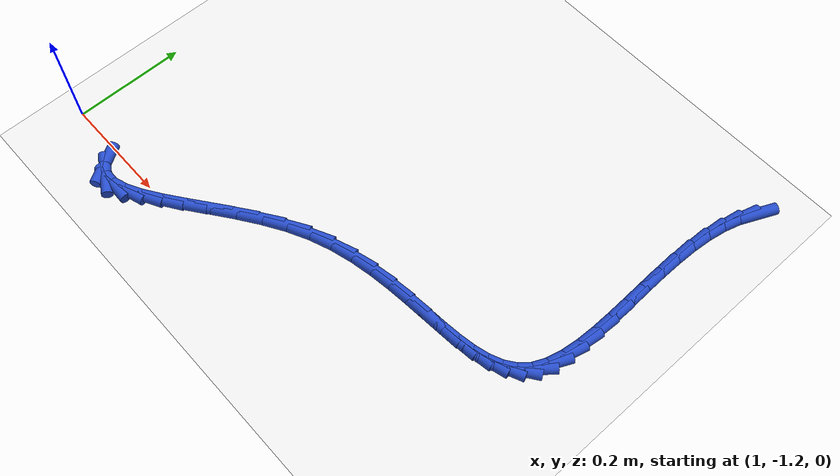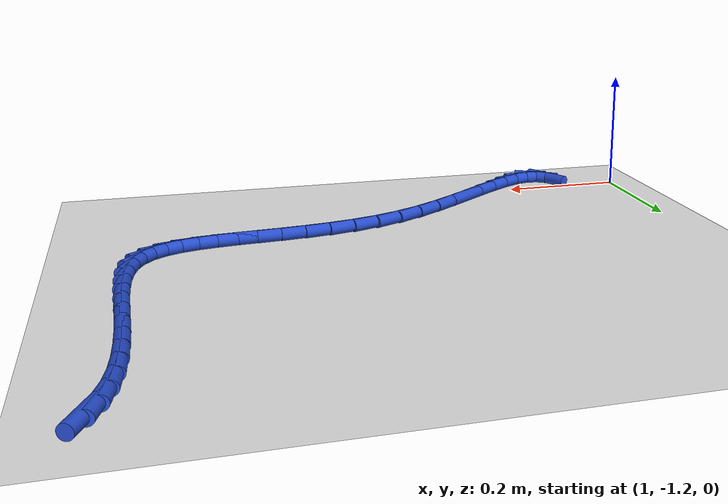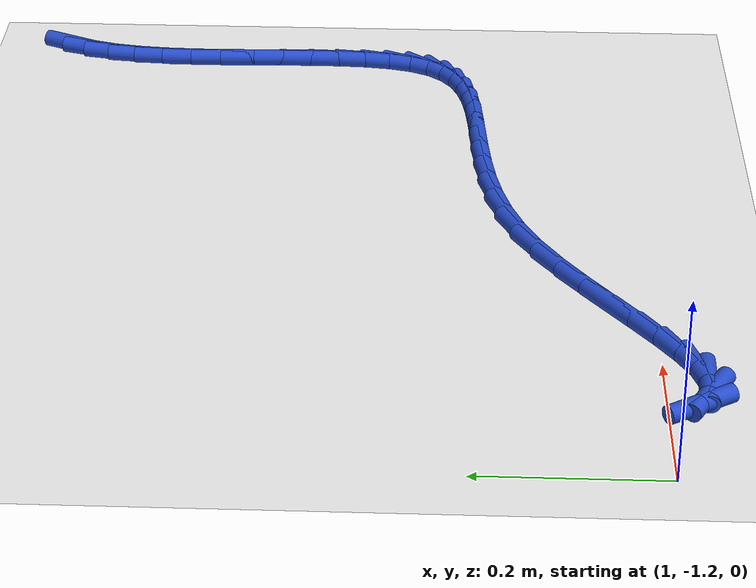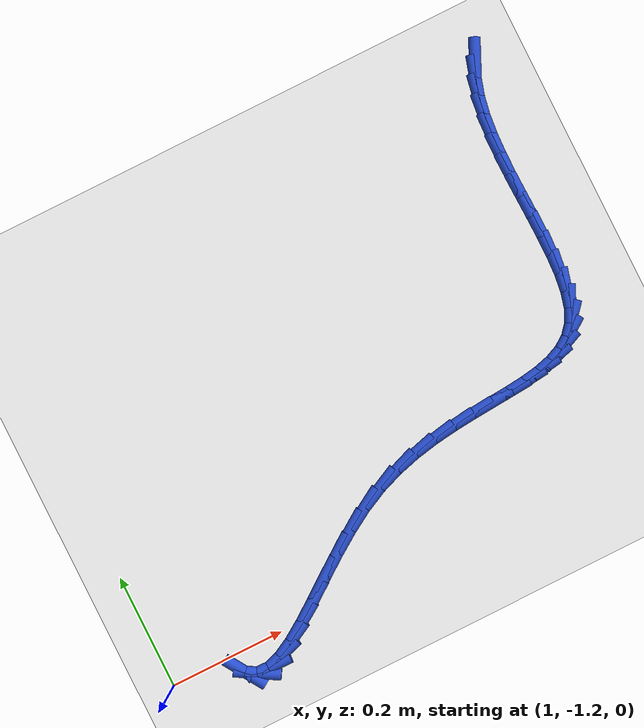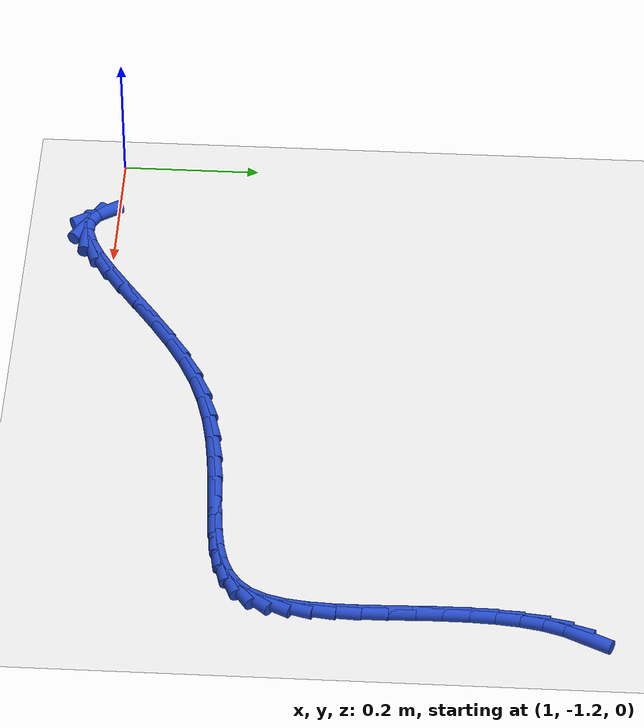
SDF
<sdf version="1.6">
 <world name="default">
  <model name="ground_plane">
   <static>1</static>
   <link name="link">
    <collision name="collision">
     <geometry><plane><normal>0 0 1</normal><size>100 100</size></plane></geometry>
     <surface><friction><ode><mu>100</mu><mu2>50</mu2></ode></friction></surface>
    </collision>
    <visual name="visual">
     <cast_shadows>0</cast_shadows>
     <geometry><plane><normal>0 0 1</normal><size>100 100</size></plane></geometry>
     <material>
      <script><uri>file://media/materials/scripts/gazebo.material</uri><name>Gazebo/WhiteGlow</name></script>
     </material>
    </visual>
   </link>
  </model>
  <model name="line">
   <link name="link_136">
    <pose>1.91003997983124 -0.49921761057943487 0.01 0 1.57 1.1378103497301253</pose>
    <collision name="collision">
     <geometry><cylinder><radius>0.01</radius><length>0.08</length></cylinder></geometry>
    </collision>
    <visual name="visual">
     <material>
      <script><name>Gazebo/Blue</name><uri>file://media/materials/scripts/gazebo.material</uri></script>
     </material>
     <geometry><cylinder><radius>0.01</radius><length>0.08</length></cylinder></geometry>
    </visual>
   </link>
   <link name="link_137">
    <pose>1.8979495693517696 -0.5253737416399826 0.01 0 1.57 1.282095721620918</pose>
    <collision name="collision">
     <geometry><cylinder><radius>0.01</radius><length>0.08</length></cylinder></geometry>
    </collision>
    <visual name="visual">
     <material>
      <script><name>Gazebo/Blue</name><uri>file://media/materials/scripts/gazebo.material</uri></script>
     </material>
     <geometry><cylinder><radius>0.01</radius><length>0.08</length></cylinder></geometry>
    </visual>
   </link>
   <link name="link_138">
    <pose>1.889272196082277 -0.5545906609637246 0.01 0 1.57 1.3911758520988065</pose>
    <collision name="collision">
     <geometry><cylinder><radius>0.01</radius><length>0.08</length></cylinder></geometry>
    </collision>
    <visual name="visual">
     <material>
      <script><name>Gazebo/Blue</name><uri>file://media/materials/scripts/gazebo.material</uri></script>
     </material>
     <geometry><cylinder><radius>0.01</radius><length>0.08</length></cylinder></geometry>
    </visual>
   </link>
   <link name="link_139">
    <pose>1.883496894300706 -0.586396930678244 0.01 0 1.57 1.471367650458028</pose>
    <collision name="collision">
     <geometry><cylinder><radius>0.01</radius><length>0.08</length></cylinder></geometry>
    </collision>
    <visual name="visual">
     <material>
      <script><name>Gazebo/Blue</name><uri>file://media/materials/scripts/gazebo.material</uri></script>
     </material>
     <geometry><cylinder><radius>0.01</radius><length>0.08</length></cylinder></geometry>
    </visual>
   </link>
   <link name="link_140">
    <pose>1.880112698285 -0.620321112911125 0.01 0 1.57 1.5285378841669248</pose>
    <collision name="collision">
     <geometry><cylinder><radius>0.01</radius><length>0.08</length></cylinder></geometry>
    </collision>
    <visual name="visual">
     <material>
      <script><name>Gazebo/Blue</name><uri>file://media/materials/scripts/gazebo.material</uri></script>
     </material>
     <geometry><cylinder><radius>0.01</radius><length>0.08</length></cylinder></geometry>
    </visual>
   </link>
   <link name="link_141">
    <pose>1.8786086423131025 -0.6558917697899485 0.01 0 1.57 1.5671256641688662</pose>
    <collision name="collision">
     <geometry><cylinder><radius>0.01</radius><length>0.08</length></cylinder></geometry>
    </collision>
    <visual name="visual">
     <material>
      <script><name>Gazebo/Blue</name><uri>file://media/materials/scripts/gazebo.material</uri></script>
     </material>
     <geometry><cylinder><radius>0.01</radius><length>0.08</length></cylinder></geometry>
    </visual>
   </link>
   <link name="link_142">
    <pose>1.878473760662957 -0.6926374634422989 0.01 0 1.57 -1.5514838919917502</pose>
    <collision name="collision">
     <geometry><cylinder><radius>0.01</radius><length>0.08</length></cylinder></geometry>
    </collision>
    <visual name="visual">
     <material>
      <script><name>Gazebo/Blue</name><uri>file://media/materials/scripts/gazebo.material</uri></script>
     </material>
     <geometry><cylinder><radius>0.01</radius><length>0.08</length></cylinder></geometry>
    </visual>
   </link>
   <link name="link_143">
    <pose>1.8791970876125064 -0.7300867559957588 0.01 0 1.57 -1.5424363940528596</pose>
    <collision name="collision">
     <geometry><cylinder><radius>0.01</radius><length>0.08</length></cylinder></geometry>
    </collision>
    <visual name="visual">
     <material>
      <script><name>Gazebo/Blue</name><uri>file://media/materials/scripts/gazebo.material</uri></script>
     </material>
     <geometry><cylinder><radius>0.01</radius><length>0.08</length></cylinder></geometry>
    </visual>
   </link>
   <link name="link_144">
    <pose>1.880265925626304 -0.7677649641122709 0.01 0 1.57 -1.5486793190890158</pose>
    <collision name="collision">
     <geometry><cylinder><radius>0.01</radius><length>0.08</length></cylinder></geometry>
    </collision>
    <visual name="visual">
     <material>
      <script><name>Gazebo/Blue</name><uri>file://media/materials/scripts/gazebo.material</uri></script>
     </material>
     <geometry><cylinder><radius>0.01</radius><length>0.08</length></cylinder></geometry>
    </visual>
   </link>
   <link name="link_145">
    <pose>1.8810907702110387 -0.8050534661148345 0.01 0 1.57 1.5676288606662598</pose>
    <collision name="collision">
     <geometry><cylinder><radius>0.01</radius><length>0.08</length></cylinder></geometry>
    </collision>
    <visual name="visual">
     <material>
      <script><name>Gazebo/Blue</name><uri>file://media/materials/scripts/gazebo.material</uri></script>
     </material>
     <geometry><cylinder><radius>0.01</radius><length>0.08</length></cylinder></geometry>
    </visual>
   </link>
   <link name="link_146">
    <pose>1.880976480653816 -0.8411356751628524 0.01 0 1.57 1.5192558845597828</pose>
    <collision name="collision">
     <geometry><cylinder><radius>0.01</radius><length>0.08</length></cylinder></geometry>
    </collision>
    <visual name="visual">
     <material>
      <script><name>Gazebo/Blue</name><uri>file://media/materials/scripts/gazebo.material</uri></script>
     </material>
     <geometry><cylinder><radius>0.01</radius><length>0.08</length></cylinder></geometry>
    </visual>
   </link>
   <link name="link_147">
    <pose>1.8792202343581035 -0.875180608355768 0.01 0 1.57 1.4400057690276784</pose>
    <collision name="collision">
     <geometry><cylinder><radius>0.01</radius><length>0.08</length></cylinder></geometry>
    </collision>
    <visual name="visual">
     <material>
      <script><name>Gazebo/Blue</name><uri>file://media/materials/scripts/gazebo.material</uri></script>
     </material>
     <geometry><cylinder><radius>0.01</radius><length>0.08</length></cylinder></geometry>
    </visual>
   </link>
   <link name="link_148">
    <pose>1.8751192087273691 -0.906357282793027 0.01 0 1.57 1.3162750425958551</pose>
    <collision name="collision">
     <geometry><cylinder><radius>0.01</radius><length>0.08</length></cylinder></geometry>
    </collision>
    <visual name="visual">
     <material>
      <script><name>Gazebo/Blue</name><uri>file://media/materials/scripts/gazebo.material</uri></script>
     </material>
     <geometry><cylinder><radius>0.01</radius><length>0.08</length></cylinder></geometry>
    </visual>
   </link>
   <link name="link_149">
    <pose>1.8679705811650809 -0.9338347155740715 0.01 0 1.57 1.12738827240143</pose>
    <collision name="collision">
     <geometry><cylinder><radius>0.01</radius><length>0.08</length></cylinder></geometry>
    </collision>
    <visual name="visual">
     <material>
      <script><name>Gazebo/Blue</name><uri>file://media/materials/scripts/gazebo.material</uri></script>
     </material>
     <geometry><cylinder><radius>0.01</radius><length>0.08</length></cylinder></geometry>
    </visual>
   </link>
   <link name="link_150">
    <pose>1.8570716819180084 -0.9567821516907595 0.01 0 1.57 0.8703267417220344</pose>
    <collision name="collision">
     <geometry><cylinder><radius>0.01</radius><length>0.08</length></cylinder></geometry>
    </collision>
    <visual name="visual">
     <material>
      <script><name>Gazebo/Blue</name><uri>file://media/materials/scripts/gazebo.material</uri></script>
     </material>
     <geometry><cylinder><radius>0.01</radius><length>0.08</length></cylinder></geometry>
    </visual>
   </link>
   <link name="link_151">
    <pose>1.8419522924366898 -0.9747154255201457 0.01 0 1.57 0.6143298451475984</pose>
    <collision name="collision">
     <geometry><cylinder><radius>0.01</radius><length>0.08</length></cylinder></geometry>
    </collision>
    <visual name="visual">
     <material>
      <script><name>Gazebo/Blue</name><uri>file://media/materials/scripts/gazebo.material</uri></script>
     </material>
     <geometry><cylinder><radius>0.01</radius><length>0.08</length></cylinder></geometry>
    </visual>
   </link>
   <link name="link_152">
    <pose>1.8228427796449176 -0.9881949583655505 0.01 0 1.57 0.40628219918729075</pose>
    <collision name="collision">
     <geometry><cylinder><radius>0.01</radius><length>0.08</length></cylinder></geometry>
    </collision>
    <visual name="visual">
     <material>
      <script><name>Gazebo/Blue</name><uri>file://media/materials/scripts/gazebo.material</uri></script>
     </material>
     <geometry><cylinder><radius>0.01</radius><length>0.08</length></cylinder></geometry>
    </visual>
   </link>
   <link name="link_153">
    <pose>1.800104968811005 -0.997977178546259 0.01 0 1.57 0.2572554999759626</pose>
    <collision name="collision">
     <geometry><cylinder><radius>0.01</radius><length>0.08</length></cylinder></geometry>
    </collision>
    <visual name="visual">
     <material>
      <script><name>Gazebo/Blue</name><uri>file://media/materials/scripts/gazebo.material</uri></script>
     </material>
     <geometry><cylinder><radius>0.01</radius><length>0.08</length></cylinder></geometry>
    </visual>
   </link>
   <link name="link_154">
    <pose>1.7741006852032721 -1.004818514381556 0.01 0 1.57 0.1597158538585468</pose>
    <collision name="collision">
     <geometry><cylinder><radius>0.01</radius><length>0.08</length></cylinder></geometry>
    </collision>
    <visual name="visual">
     <material>
      <script><name>Gazebo/Blue</name><uri>file://media/materials/scripts/gazebo.material</uri></script>
     </material>
     <geometry><cylinder><radius>0.01</radius><length>0.08</length></cylinder></geometry>
    </visual>
   </link>
   <link name="link_155">
    <pose>1.7451917540900348 -1.0094753941907268 0.01 0 1.57 0.10230209153707029</pose>
    <collision name="collision">
     <geometry><cylinder><radius>0.01</radius><length>0.08</length></cylinder></geometry>
    </collision>
    <visual name="visual">
     <material>
      <script><name>Gazebo/Blue</name><uri>file://media/materials/scripts/gazebo.material</uri></script>
     </material>
     <geometry><cylinder><radius>0.01</radius><length>0.08</length></cylinder></geometry>
    </visual>
   </link>
   <link name="link_156">
    <pose>1.7137400007396095 -1.0127042462930576 0.01 0 1.57 0.07588858081863742</pose>
    <collision name="collision">
     <geometry><cylinder><radius>0.01</radius><length>0.08</length></cylinder></geometry>
    </collision>
    <visual name="visual">
     <material>
      <script><name>Gazebo/Blue</name><uri>file://media/materials/scripts/gazebo.material</uri></script>
     </material>
     <geometry><cylinder><radius>0.01</radius><length>0.08</length></cylinder></geometry>
    </visual>
   </link>
   <link name="link_157">
    <pose>1.6801072504203127 -1.015261499007832 0.01 0 1.57 0.07438824976163395</pose>
    <collision name="collision">
     <geometry><cylinder><radius>0.01</radius><length>0.08</length></cylinder></geometry>
    </collision>
    <visual name="visual">
     <material>
      <script><name>Gazebo/Blue</name><uri>file://media/materials/scripts/gazebo.material</uri></script>
     </material>
     <geometry><cylinder><radius>0.01</radius><length>0.08</length></cylinder></geometry>
    </visual>
   </link>
   <link name="link_158">
    <pose>1.644655328400462 -1.0179035806543355 0.01 0 1.57 0.09409701646042966</pose>
    <collision name="collision">
     <geometry><cylinder><radius>0.01</radius><length>0.08</length></cylinder></geometry>
    </collision>
    <visual name="visual">
     <material>
      <script><name>Gazebo/Blue</name><uri>file://media/materials/scripts/gazebo.material</uri></script>
     </material>
     <geometry><cylinder><radius>0.01</radius><length>0.08</length></cylinder></geometry>
    </visual>
   </link>
   <link name="link_159">
    <pose>1.6077460599483733 -1.0213869195518537 0.01 0 1.57 0.1329061957850409</pose>
    <collision name="collision">
     <geometry><cylinder><radius>0.01</radius><length>0.08</length></cylinder></geometry>
    </collision>
    <visual name="visual">
     <material>
      <script><name>Gazebo/Blue</name><uri>file://media/materials/scripts/gazebo.material</uri></script>
     </material>
     <geometry><cylinder><radius>0.01</radius><length>0.08</length></cylinder></geometry>
    </visual>
   </link>
   <link name="link_160">
    <pose>1.5697412703323645 -1.0264679440196716 0.01 0 1.57 0.18962555444464063</pose>
    <collision name="collision">
     <geometry><cylinder><radius>0.01</radius><length>0.08</length></cylinder></geometry>
    </collision>
    <visual name="visual">
     <material>
      <script><name>Gazebo/Blue</name><uri>file://media/materials/scripts/gazebo.material</uri></script>
     </material>
     <geometry><cylinder><radius>0.01</radius><length>0.08</length></cylinder></geometry>
    </visual>
   </link>
   <link name="link_161">
    <pose>1.5310027848207504 -1.0339030823770732 0.01 0 1.57 0.26337541006103904</pose>
    <collision name="collision">
     <geometry><cylinder><radius>0.01</radius><length>0.08</length></cylinder></geometry>
    </collision>
    <visual name="visual">
     <material>
      <script><name>Gazebo/Blue</name><uri>file://media/materials/scripts/gazebo.material</uri></script>
     </material>
     <geometry><cylinder><radius>0.01</radius><length>0.08</length></cylinder></geometry>
    </visual>
   </link>
   <link name="link_162">
    <pose>1.4918924286818485 -1.0444487629433454 0.01 0 1.57 0.35298749780106486</pose>
    <collision name="collision">
     <geometry><cylinder><radius>0.01</radius><length>0.08</length></cylinder></geometry>
    </collision>
    <visual name="visual">
     <material>
      <script><name>Gazebo/Blue</name><uri>file://media/materials/scripts/gazebo.material</uri></script>
     </material>
     <geometry><cylinder><radius>0.01</radius><length>0.08</length></cylinder></geometry>
    </visual>
   </link>
   <link name="link_163">
    <pose>1.4527720271839766 -1.0588614140377721 0.01 0 1.57 0.4541036727964984</pose>
    <collision name="collision">
     <geometry><cylinder><radius>0.01</radius><length>0.08</length></cylinder></geometry>
    </collision>
    <visual name="visual">
     <material>
      <script><name>Gazebo/Blue</name><uri>file://media/materials/scripts/gazebo.material</uri></script>
     </material>
     <geometry><cylinder><radius>0.01</radius><length>0.08</length></cylinder></geometry>
    </visual>
   </link>
   <link name="link_164">
    <pose>1.4140014622517436 -1.07778634953977 0.01 0 1.57 0.5391459501816125</pose>
    <collision name="collision">
     <geometry><cylinder><radius>0.01</radius><length>0.08</length></cylinder></geometry>
    </collision>
    <visual name="visual">
     <material>
      <script><name>Gazebo/Blue</name><uri>file://media/materials/scripts/gazebo.material</uri></script>
     </material>
     <geometry><cylinder><radius>0.01</radius><length>0.08</length></cylinder></geometry>
    </visual>
   </link>
   <link name="link_165">
    <pose>1.3759179088706592 -1.1005705701123067 0.01 0 1.57 0.5960574863479596</pose>
    <collision name="collision">
     <geometry><cylinder><radius>0.01</radius><length>0.08</length></cylinder></geometry>
    </collision>
    <visual name="visual">
     <material>
      <script><name>Gazebo/Blue</name><uri>file://media/materials/scripts/gazebo.material</uri></script>
     </material>
     <geometry><cylinder><radius>0.01</radius><length>0.08</length></cylinder></geometry>
    </visual>
   </link>
   <link name="link_166">
    <pose>1.3388438373243325 -1.1257203066105141 0.01 0 1.57 0.6290319313807684</pose>
    <collision name="collision">
     <geometry><cylinder><radius>0.01</radius><length>0.08</length></cylinder></geometry>
    </collision>
    <visual name="visual">
     <material>
      <script><name>Gazebo/Blue</name><uri>file://media/materials/scripts/gazebo.material</uri></script>
     </material>
     <geometry><cylinder><radius>0.01</radius><length>0.08</length></cylinder></geometry>
    </visual>
   </link>
   <link name="link_167">
    <pose>1.3031014703322104 -1.1517276349291123 0.01 0 1.57 0.6395593331962192</pose>
    <collision name="collision">
     <geometry><cylinder><radius>0.01</radius><length>0.08</length></cylinder></geometry>
    </collision>
    <visual name="visual">
     <material>
      <script><name>Gazebo/Blue</name><uri>file://media/materials/scripts/gazebo.material</uri></script>
     </material>
     <geometry><cylinder><radius>0.01</radius><length>0.08</length></cylinder></geometry>
    </visual>
   </link>
   <link name="link_168">
    <pose>1.2690130306137384 -1.1770846309628245 0.01 0 1.57 0.6256186765600333</pose>
    <collision name="collision">
     <geometry><cylinder><radius>0.01</radius><length>0.08</length></cylinder></geometry>
    </collision>
    <visual name="visual">
     <material>
      <script><name>Gazebo/Blue</name><uri>file://media/materials/scripts/gazebo.material</uri></script>
     </material>
     <geometry><cylinder><radius>0.01</radius><length>0.08</length></cylinder></geometry>
    </visual>
   </link>
   <link name="link_169">
    <pose>1.2369007408883632 -1.2002833706063731 0.01 0 1.57 0.5799864210593284</pose>
    <collision name="collision">
     <geometry><cylinder><radius>0.01</radius><length>0.08</length></cylinder></geometry>
    </collision>
    <visual name="visual">
     <material>
      <script><name>Gazebo/Blue</name><uri>file://media/materials/scripts/gazebo.material</uri></script>
     </material>
     <geometry><cylinder><radius>0.01</radius><length>0.08</length></cylinder></geometry>
    </visual>
   </link>
   <link name="link_170">
    <pose>1.20708682387553 -1.2198159297544797 0.01 0 1.57 0.48580683460603824</pose>
    <collision name="collision">
     <geometry><cylinder><radius>0.01</radius><length>0.08</length></cylinder></geometry>
    </collision>
    <visual name="visual">
     <material>
      <script><name>Gazebo/Blue</name><uri>file://media/materials/scripts/gazebo.material</uri></script>
     </material>
     <geometry><cylinder><radius>0.01</radius><length>0.08</length></cylinder></geometry>
    </visual>
   </link>
   <link name="link_171">
    <pose>1.1798935022946861 -1.2341743843018658 0.01 0 1.57 0.306567620170586</pose>
    <collision name="collision">
     <geometry><cylinder><radius>0.01</radius><length>0.08</length></cylinder></geometry>
    </collision>
    <visual name="visual">
     <material>
      <script><name>Gazebo/Blue</name><uri>file://media/materials/scripts/gazebo.material</uri></script>
     </material>
     <geometry><cylinder><radius>0.01</radius><length>0.08</length></cylinder></geometry>
    </visual>
   </link>
   <link name="link_172">
    <pose>1.1556429988652783 -1.2418508101432546 0.01 0 1.57 -0.024465722567821552</pose>
    <collision name="collision">
     <geometry><cylinder><radius>0.01</radius><length>0.08</length></cylinder></geometry>
    </collision>
    <visual name="visual">
     <material>
      <script><name>Gazebo/Blue</name><uri>file://media/materials/scripts/gazebo.material</uri></script>
     </material>
     <geometry><cylinder><radius>0.01</radius><length>0.08</length></cylinder></geometry>
    </visual>
   </link>
   <link name="link_173">
    <pose>1.134657536306752 -1.241337283173368 0.01 0 1.57 -0.5307485968858382</pose>
    <collision name="collision">
     <geometry><cylinder><radius>0.01</radius><length>0.08</length></cylinder></geometry>
    </collision>
    <visual name="visual">
     <material>
      <script><name>Gazebo/Blue</name><uri>file://media/materials/scripts/gazebo.material</uri></script>
     </material>
     <geometry><cylinder><radius>0.01</radius><length>0.08</length></cylinder></geometry>
    </visual>
   </link>
   <link name="link_174">
    <pose>1.1172593373385533 -1.2311258792869277 0.01 0 1.57 -1.006940460430303</pose>
    <collision name="collision">
     <geometry><cylinder><radius>0.01</radius><length>0.08</length></cylinder></geometry>
    </collision>
    <visual name="visual">
     <material>
      <script><name>Gazebo/Blue</name><uri>file://media/materials/scripts/gazebo.material</uri></script>
     </material>
     <geometry><cylinder><radius>0.01</radius><length>0.08</length></cylinder></geometry>
    </visual>
   </link>
  </model>
 </world>
</sdf>
